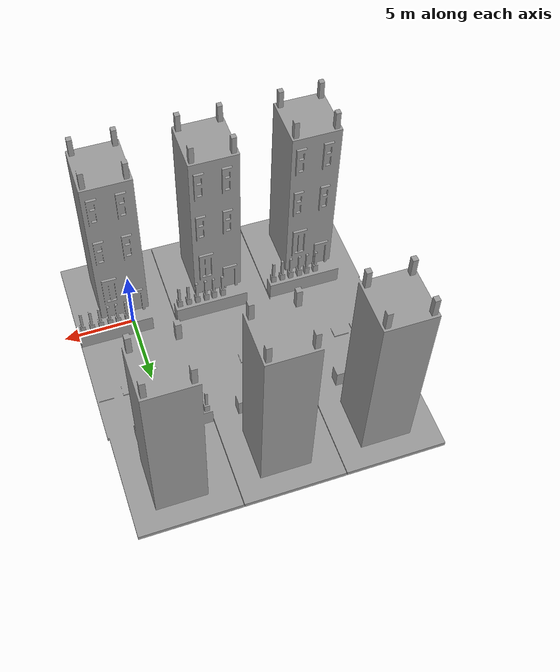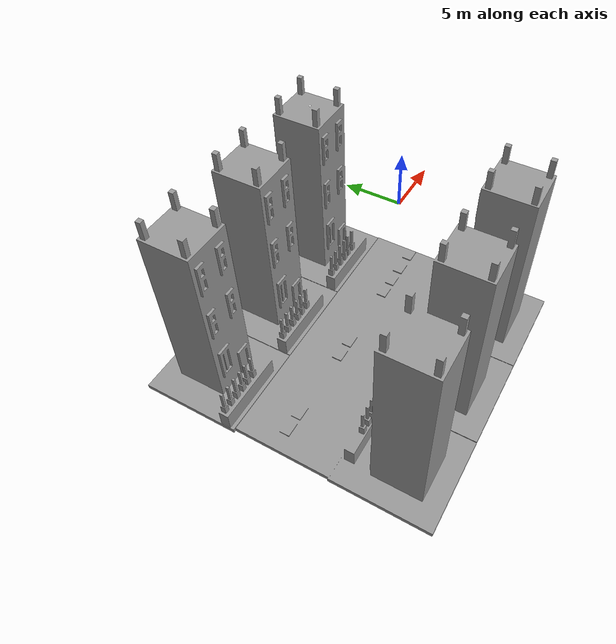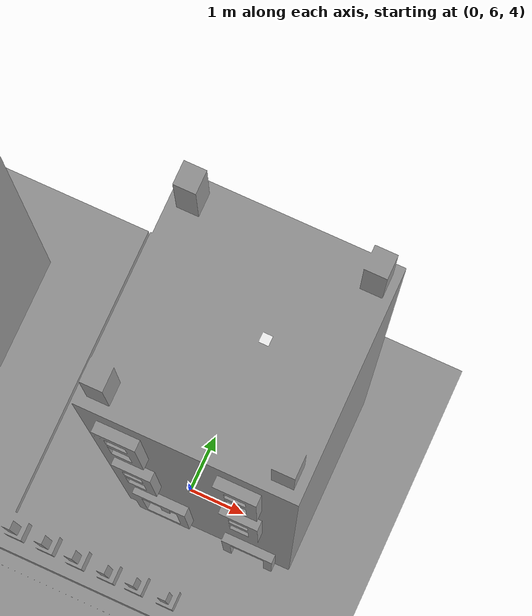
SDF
<?xml version='1.0'?>
<sdf version='1.7'>
  <model name='Untitled'>
    <link name='link_0'>
      <inertial>
        <mass>1</mass>
        <inertia>
          <ixx>0.166667</ixx>
          <ixy>0</ixy>
          <ixz>0</ixz>
          <iyy>0.166667</iyy>
          <iyz>0</iyz>
          <izz>0.166667</izz>
        </inertia>
        <pose>0 0 0 0 -0 0</pose>
      </inertial>
      <pose>-0.262843 -8.50545 -6.64805 0 -0 0</pose>
      <gravity>1</gravity>
      <self_collide>0</self_collide>
      <kinematic>0</kinematic>
      <enable_wind>0</enable_wind>
      <visual name='visual'>
        <pose>0 0 0 0 -0 0</pose>
        <geometry>
          <mesh>
            <uri>/home/ayan/drone1_ws/src/drone/models/drone_world/meshes/untitled.dae</uri>
            <scale>0.2 0.2 0.2</scale>
          </mesh>
        </geometry>
        <material>
          <lighting>1</lighting>
          <script>
            <uri>file://media/materials/scripts/gazebo.material</uri>
            <name>Gazebo/Grey</name>
          </script>
          <shader type='pixel'>
            <normal_map>__default__</normal_map>
          </shader>
          <ambient>0.3 0.3 0.3 1</ambient>
          <diffuse>0.7 0.7 0.7 1</diffuse>
          <specular>0.01 0.01 0.01 1</specular>
          <emissive>0 0 0 1</emissive>
        </material>
        <transparency>0</transparency>
        <cast_shadows>1</cast_shadows>
      </visual>
      <collision name='collision'>
        <laser_retro>0</laser_retro>
        <max_contacts>10</max_contacts>
        <pose>0 0 0 0 -0 0</pose>
        <geometry>
          <mesh>
            <uri>/home/ayan/drone1_ws/src/drone/models/drone_world/meshes/untitled.dae</uri>
            <scale>1 1 1</scale>
          </mesh>
        </geometry>
        <surface>
          <friction>
            <ode>
              <mu>1</mu>
              <mu2>1</mu2>
              <fdir1>0 0 0</fdir1>
              <slip1>0</slip1>
              <slip2>0</slip2>
            </ode>
            <torsional>
              <coefficient>1</coefficient>
              <patch_radius>0</patch_radius>
              <surface_radius>0</surface_radius>
              <use_patch_radius>1</use_patch_radius>
              <ode>
                <slip>0</slip>
              </ode>
            </torsional>
          </friction>
          <bounce>
            <restitution_coefficient>0</restitution_coefficient>
            <threshold>1e+06</threshold>
          </bounce>
          <contact>
            <collide_without_contact>0</collide_without_contact>
            <collide_without_contact_bitmask>1</collide_without_contact_bitmask>
            <collide_bitmask>1</collide_bitmask>
            <ode>
              <soft_cfm>0</soft_cfm>
              <soft_erp>0.2</soft_erp>
              <kp>1e+13</kp>
              <kd>1</kd>
              <max_vel>0.01</max_vel>
              <min_depth>0</min_depth>
            </ode>
            <bullet>
              <split_impulse>1</split_impulse>
              <split_impulse_penetration_threshold>-0.01</split_impulse_penetration_threshold>
              <soft_cfm>0</soft_cfm>
              <soft_erp>0.2</soft_erp>
              <kp>1e+13</kp>
              <kd>1</kd>
            </bullet>
          </contact>
        </surface>
      </collision>
    </link>
    <model name='aruco_marker'>
      <link name='marker'>
        <pose>0 0 0 0 -0 0</pose>
        <visual name='visual'>
          <geometry>
            <box>
              <size>0.1778 0.1778 1e-05</size>
            </box>
          </geometry>
          <material>
            <script>
              <uri>model://aruco_marker/materials/scripts</uri>
              <uri>model://aruco_marker/materials/textures</uri>
              <name>arucomarker/Marker</name>
            </script>
            <ambient>1 1 1 1</ambient>
            <diffuse>1 1 1 1</diffuse>
            <specular>0 0 0 1</specular>
            <emissive>1 1 1 0</emissive>
            <shader type='vertex'>
              <normal_map>__default__</normal_map>
            </shader>
          </material>
          <pose>0 0 0 0 -0 0</pose>
          <cast_shadows>1</cast_shadows>
          <transparency>0</transparency>
        </visual>
        <collision name='collision'>
          <laser_retro>0</laser_retro>
          <max_contacts>10</max_contacts>
          <pose>0 0 0 0 -0 0</pose>
          <geometry>
            <box>
              <size>0.1778 0.1778 1e-05</size>
            </box>
          </geometry>
        </collision>
      </link>
      <pose>0.262843 8.5054 6.64802 0 -0 0</pose>
    </model>
    <static>0</static>
    <allow_auto_disable>1</allow_auto_disable>
  </model>
</sdf>
